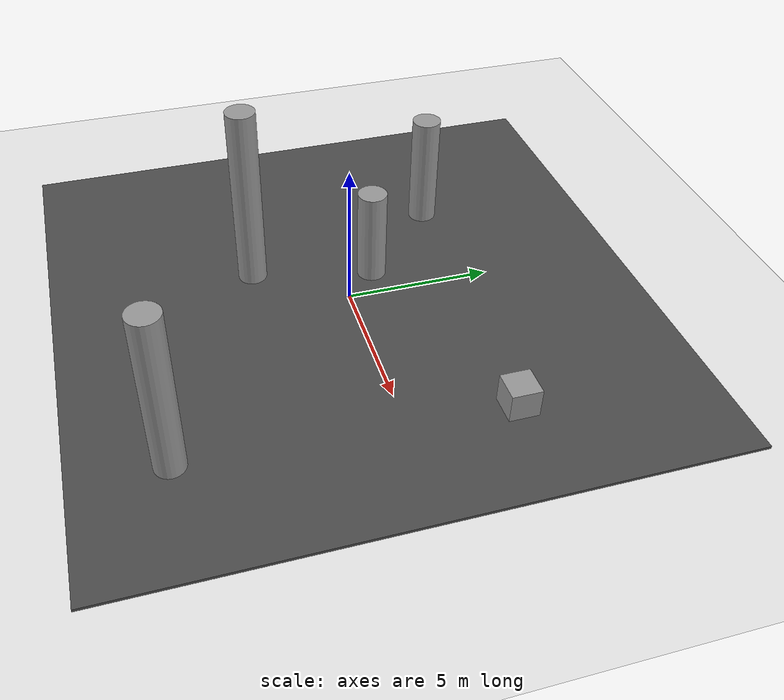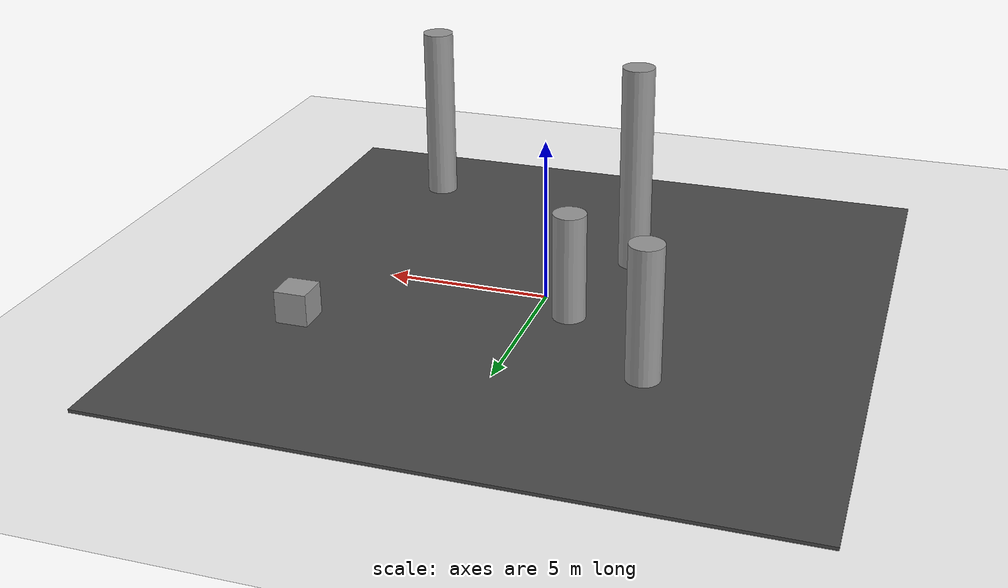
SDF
<sdf version="1.6">
 <world name="default">
  <light name="sun" type="directional">
   <cast_shadows>0</cast_shadows>
   <pose>0 0 10 0 -0 0</pose>
   <diffuse>0.8 0.8 0.8 1</diffuse>
   <specular>0.2 0.2 0.2 1</specular>
   <attenuation>
    <range>1000</range>
    <constant>0.9</constant>
    <linear>0.01</linear>
    <quadratic>0.001</quadratic>
   </attenuation>
   <direction>-0.5 0.1 -0.9</direction>
  </light>
  <model name="ground_plane">
   <static>1</static>
   <link name="link">
    <collision name="collision">
     <geometry><plane><normal>0 0 1</normal><size>100 100</size></plane></geometry>
     <surface><friction><ode><mu>100</mu><mu2>50</mu2></ode></friction></surface>
    </collision>
    <visual name="visual">
     <cast_shadows>0</cast_shadows>
     <geometry><plane><normal>0 0 1</normal><size>100 100</size></plane></geometry>
     <material>
      <script><uri>file://media/materials/scripts/gazebo.material</uri><name>Gazebo/Grey</name></script>
     </material>
    </visual>
   </link>
  </model>
  <gravity>0 0 -9.8</gravity>
  <magnetic_field>6e-06 2.3e-05 -4.2e-05</magnetic_field>
  <atmosphere type="adiabatic"/>
  <physics name="default_physics" default="0" type="ode">
   <max_step_size>0.001</max_step_size>
   <real_time_factor>1</real_time_factor>
   <real_time_update_rate>1000</real_time_update_rate>
  </physics>
  <scene><ambient>0.4 0.4 0.4 1</ambient><background>0.7 0.7 0.7 1</background><shadows>0</shadows></scene>
  <spherical_coordinates>
   <surface_model>EARTH_WGS84</surface_model>
   <latitude_deg>0</latitude_deg>
   <longitude_deg>0</longitude_deg>
   <elevation>0</elevation>
   <heading_deg>0</heading_deg>
  </spherical_coordinates>
  <light name="user_spot_light_0" type="spot">
   <pose>0.012186 -7.95073 1 0 -0 0</pose>
   <diffuse>0.5 0.5 0.5 1</diffuse>
   <specular>0.1 0.1 0.1 1</specular>
   <direction>0 0 -1</direction>
   <attenuation>
    <range>20</range>
    <constant>0.5</constant>
    <linear>0.01</linear>
    <quadratic>0.001</quadratic>
   </attenuation>
   <cast_shadows>0</cast_shadows>
   <spot><inner_angle>0.6</inner_angle><outer_angle>1</outer_angle><falloff>1</falloff></spot>
  </light>
  <light name="user_spot_light_1" type="spot">
   <pose>-3.99672 7.96504 1 0 -0 0</pose>
   <diffuse>0.5 0.5 0.5 1</diffuse>
   <specular>0.1 0.1 0.1 1</specular>
   <direction>0 0 -1</direction>
   <attenuation>
    <range>20</range>
    <constant>0.5</constant>
    <linear>0.01</linear>
    <quadratic>0.001</quadratic>
   </attenuation>
   <cast_shadows>0</cast_shadows>
   <spot><inner_angle>0.6</inner_angle><outer_angle>1</outer_angle><falloff>1</falloff></spot>
  </light>
  <light name="user_spot_light_2" type="spot">
   <pose>3.99003 8.01664 1 0 -0 0</pose>
   <diffuse>0.5 0.5 0.5 1</diffuse>
   <specular>0.1 0.1 0.1 1</specular>
   <direction>0 0 -1</direction>
   <attenuation>
    <range>20</range>
    <constant>0.5</constant>
    <linear>0.01</linear>
    <quadratic>0.001</quadratic>
   </attenuation>
   <cast_shadows>0</cast_shadows>
   <spot><inner_angle>0.6</inner_angle><outer_angle>1</outer_angle><falloff>1</falloff></spot>
  </light>
  <model name="unit_cylinder">
   <pose>-2 -3 0.550001 1e-06 -0 2e-06</pose>
   <link name="link">
    <inertial>
     <mass>1</mass>
     <inertia><ixx>0.145833</ixx><ixy>0</ixy><ixz>0</ixz><iyy>0.145833</iyy><iyz>0</iyz><izz>0.125</izz></inertia>
    </inertial>
    <collision name="collision">
     <geometry><cylinder><radius>0.5</radius><length>11.9811</length></cylinder></geometry>
    </collision>
    <visual name="visual">
     <geometry><cylinder><radius>0.5</radius><length>11.9811</length></cylinder></geometry>
     <material>
      <script><name>Gazebo/Grey</name><uri>file://media/materials/scripts/gazebo.material</uri></script>
     </material>
    </visual>
   </link>
  </model>
  <model name="unit_cylinder_0">
   <pose>5.99997 -7 0.549996 3e-06 -7e-06 -3.8e-05</pose>
   <link name="link">
    <inertial>
     <mass>1</mass>
     <inertia><ixx>0.145833</ixx><ixy>0</ixy><ixz>0</ixz><iyy>0.145833</iyy><iyz>0</iyz><izz>0.125</izz></inertia>
    </inertial>
    <collision name="collision">
     <geometry><cylinder><radius>0.5</radius><length>10.4605</length></cylinder></geometry>
    </collision>
    <visual name="visual">
     <geometry><cylinder><radius>0.5</radius><length>10.4605</length></cylinder></geometry>
     <material>
      <script><name>Gazebo/Grey</name><uri>file://media/materials/scripts/gazebo.material</uri></script>
     </material>
    </visual>
   </link>
  </model>
  <model name="unit_cylinder_1">
   <pose>-4 4 0.55 0 -0 5e-06</pose>
   <link name="link">
    <inertial>
     <mass>1</mass>
     <inertia><ixx>0.145833</ixx><ixy>0</ixy><ixz>0</ixz><iyy>0.145833</iyy><iyz>0</iyz><izz>0.125</izz></inertia>
    </inertial>
    <collision name="collision">
     <geometry><cylinder><radius>0.5</radius><length>7.09059</length></cylinder></geometry>
    </collision>
    <visual name="visual">
     <geometry><cylinder><radius>0.5</radius><length>7.09059</length></cylinder></geometry>
     <material>
      <script><name>Gazebo/Grey</name><uri>file://media/materials/scripts/gazebo.material</uri></script>
     </material>
    </visual>
   </link>
  </model>
  <model name="unit_box">
   <pose>6.52305 3.49666 0.55 0 -0 0</pose>
   <link name="link">
    <inertial>
     <mass>1</mass>
     <inertia>
      <ixx>0.166667</ixx>
      <ixy>0</ixy>
      <ixz>0</ixz>
      <iyy>0.166667</iyy>
      <iyz>0</iyz>
      <izz>0.166667</izz>
     </inertia>
    </inertial>
    <collision name="collision"><geometry><box><size>1 1 1</size></box></geometry></collision>
    <visual name="visual">
     <geometry><box><size>1 1 1</size></box></geometry>
     <material>
      <script><name>Gazebo/Grey</name><uri>file://media/materials/scripts/gazebo.material</uri></script>
     </material>
    </visual>
   </link>
  </model>
  <model name="unit_cylinder_2">
   <pose>-1.05827 1.10363 0.5 0 -0 0</pose>
   <link name="link">
    <inertial>
     <mass>1</mass>
     <inertia><ixx>0.145833</ixx><ixy>0</ixy><ixz>0</ixz><iyy>0.145833</iyy><iyz>0</iyz><izz>0.125</izz></inertia>
    </inertial>
    <collision name="collision">
     <geometry><cylinder><radius>0.5</radius><length>5.72787</length></cylinder></geometry>
    </collision>
    <visual name="visual">
     <geometry><cylinder><radius>0.5</radius><length>5.72787</length></cylinder></geometry>
     <material>
      <script><name>Gazebo/Grey</name><uri>file://media/materials/scripts/gazebo.material</uri></script>
     </material>
    </visual>
   </link>
  </model>
  <model name="asphalt_plane">
   <static>1</static>
   <link name="link">
    <collision name="collision"><geometry><box><size>20 20 0.1</size></box></geometry></collision>
    <visual name="visual">
     <cast_shadows>0</cast_shadows>
     <geometry><box><size>20 20 0.1</size></box></geometry>
     <material>
      <script>
       <uri>model://asphalt_plane/materials/scripts</uri>
       <uri>model://asphalt_plane/materials/textures</uri>
       <name>vrc/asphalt</name>
      </script>
     </material>
    </visual>
   </link>
  </model>
 </world>
</sdf>
